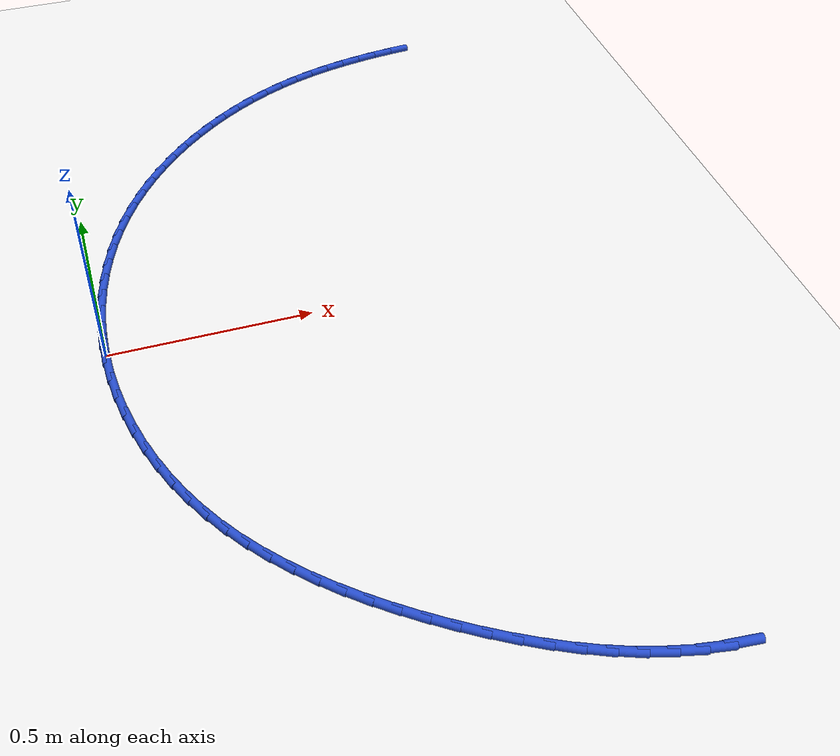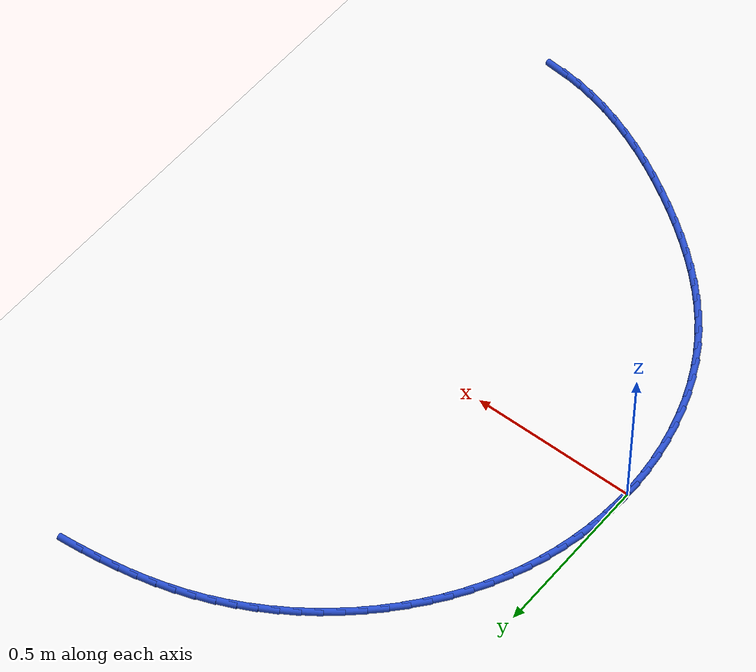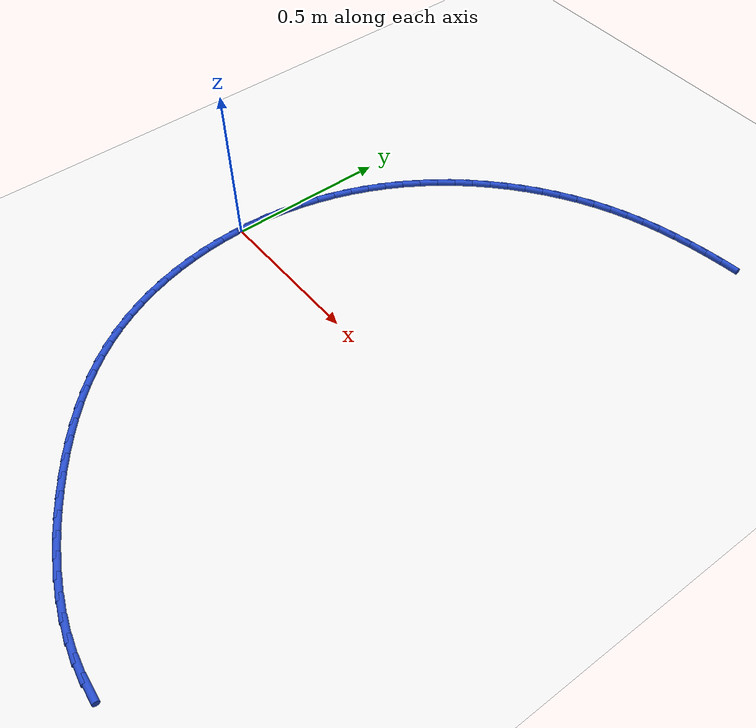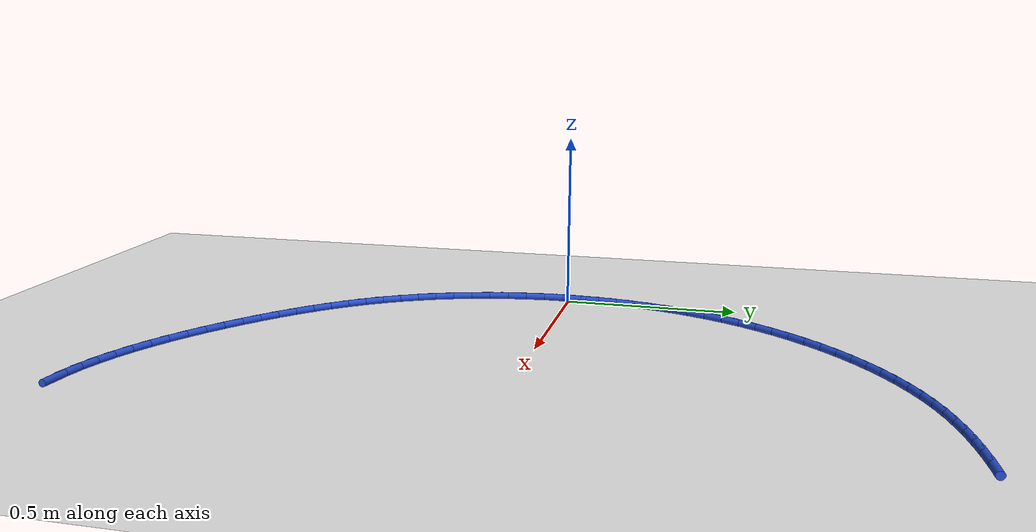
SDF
<sdf version="1.6">
 <world name="default">
  <model name="ground_plane">
   <static>1</static>
   <link name="link">
    <collision name="collision">
     <geometry><plane><normal>0 0 1</normal><size>100 100</size></plane></geometry>
     <surface><friction><ode><mu>100</mu><mu2>50</mu2></ode></friction></surface>
    </collision>
    <visual name="visual">
     <cast_shadows>0</cast_shadows>
     <geometry><plane><normal>0 0 1</normal><size>100 100</size></plane></geometry>
     <material>
      <script><uri>file://media/materials/scripts/gazebo.material</uri><name>Gazebo/WhiteGlow</name></script>
     </material>
    </visual>
   </link>
  </model>
  <model name="line">
   <link name="link_0">
    <pose>7.632783294297951e-17 0.0 0.01 0 1.57 1.5426454265933758</pose>
    <collision name="collision">
     <geometry><cylinder><radius>0.01</radius><length>0.08</length></cylinder></geometry>
    </collision>
    <visual name="visual">
     <material>
      <script><name>Gazebo/Blue</name><uri>file://media/materials/scripts/gazebo.material</uri></script>
     </material>
     <geometry><cylinder><radius>0.01</radius><length>0.08</length></cylinder></geometry>
    </visual>
   </link>
   <link name="link_1">
    <pose>0.0015899709792157849 0.05646536851486784 0.01 0 1.57 1.4860742646421639</pose>
    <collision name="collision">
     <geometry><cylinder><radius>0.01</radius><length>0.08</length></cylinder></geometry>
    </collision>
    <visual name="visual">
     <material>
      <script><name>Gazebo/Blue</name><uri>file://media/materials/scripts/gazebo.material</uri></script>
     </material>
     <geometry><cylinder><radius>0.01</radius><length>0.08</length></cylinder></geometry>
    </visual>
   </link>
   <link name="link_2">
    <pose>0.006360823636328731 0.11264238172625161 0.01 0 1.57 1.4297422771692536</pose>
    <collision name="collision">
     <geometry><cylinder><radius>0.01</radius><length>0.08</length></cylinder></geometry>
    </collision>
    <visual name="visual">
     <material>
      <script><name>Gazebo/Blue</name><uri>file://media/materials/scripts/gazebo.material</uri></script>
     </material>
     <geometry><cylinder><radius>0.01</radius><length>0.08</length></cylinder></geometry>
    </visual>
   </link>
   <link name="link_3">
    <pose>0.014276079416856248 0.16838478272034393 0.01 0 1.57 1.373559850659183</pose>
    <collision name="collision">
     <geometry><cylinder><radius>0.01</radius><length>0.08</length></cylinder></geometry>
    </collision>
    <visual name="visual">
     <material>
      <script><name>Gazebo/Blue</name><uri>file://media/materials/scripts/gazebo.material</uri></script>
     </material>
     <geometry><cylinder><radius>0.01</radius><length>0.08</length></cylinder></geometry>
    </visual>
   </link>
   <link name="link_4">
    <pose>0.025299259766315686 0.22354631458333757 0.01 0 1.57 1.3174320569557427</pose>
    <collision name="collision">
     <geometry><cylinder><radius>0.01</radius><length>0.08</length></cylinder></geometry>
    </collision>
    <visual name="visual">
     <material>
      <script><name>Gazebo/Blue</name><uri>file://media/materials/scripts/gazebo.material</uri></script>
     </material>
     <geometry><cylinder><radius>0.01</radius><length>0.08</length></cylinder></geometry>
    </visual>
   </link>
   <link name="link_5">
    <pose>0.039393886130224404 0.2779807204014252 0.01 0 1.57 1.2612616253354412</pose>
    <collision name="collision">
     <geometry><cylinder><radius>0.01</radius><length>0.08</length></cylinder></geometry>
    </collision>
    <visual name="visual">
     <material>
      <script><name>Gazebo/Blue</name><uri>file://media/materials/scripts/gazebo.material</uri></script>
     </material>
     <geometry><cylinder><radius>0.01</radius><length>0.08</length></cylinder></geometry>
    </visual>
   </link>
   <link name="link_6">
    <pose>0.056523479954099745 0.33154174326079944 0.01 0 1.57 1.2049519143934626</pose>
    <collision name="collision">
     <geometry><cylinder><radius>0.01</radius><length>0.08</length></cylinder></geometry>
    </collision>
    <visual name="visual">
     <material>
      <script><name>Gazebo/Blue</name><uri>file://media/materials/scripts/gazebo.material</uri></script>
     </material>
     <geometry><cylinder><radius>0.01</radius><length>0.08</length></cylinder></geometry>
    </visual>
   </link>
   <link name="link_7">
    <pose>0.07665156268345907 0.38408312624765334 0.01 0 1.57 1.1484099021132677</pose>
    <collision name="collision">
     <geometry><cylinder><radius>0.01</radius><length>0.08</length></cylinder></geometry>
    </collision>
    <visual name="visual">
     <material>
      <script><name>Gazebo/Blue</name><uri>file://media/materials/scripts/gazebo.material</uri></script>
     </material>
     <geometry><cylinder><radius>0.01</radius><length>0.08</length></cylinder></geometry>
    </visual>
   </link>
   <link name="link_8">
    <pose>0.09974165576381964 0.43545861244817896 0.01 0 1.57 1.0915492100848656</pose>
    <collision name="collision">
     <geometry><cylinder><radius>0.01</radius><length>0.08</length></cylinder></geometry>
    </collision>
    <visual name="visual">
     <material>
      <script><name>Gazebo/Blue</name><uri>file://media/materials/scripts/gazebo.material</uri></script>
     </material>
     <geometry><cylinder><radius>0.01</radius><length>0.08</length></cylinder></geometry>
    </visual>
   </link>
   <link name="link_9">
    <pose>0.12575728064069897 0.4855219449485697 0.01 0 1.57 1.0344214571395451</pose>
    <collision name="collision">
     <geometry><cylinder><radius>0.01</radius><length>0.08</length></cylinder></geometry>
    </collision>
    <visual name="visual">
     <material>
      <script><name>Gazebo/Blue</name><uri>file://media/materials/scripts/gazebo.material</uri></script>
     </material>
     <geometry><cylinder><radius>0.01</radius><length>0.08</length></cylinder></geometry>
    </visual>
   </link>
   <link name="link_10">
    <pose>0.15465462470984379 0.5341287273709183 0.01 0 1.57 0.9782268303934601</pose>
    <collision name="collision">
     <geometry><cylinder><radius>0.01</radius><length>0.08</length></cylinder></geometry>
    </collision>
    <visual name="visual">
     <material>
      <script><name>Gazebo/Blue</name><uri>file://media/materials/scripts/gazebo.material</uri></script>
     </material>
     <geometry><cylinder><radius>0.01</radius><length>0.08</length></cylinder></geometry>
    </visual>
   </link>
   <link name="link_11">
    <pose>0.1863155692041831 0.5811534136707482 0.01 0 1.57 0.9235329419798526</pose>
    <collision name="collision">
     <geometry><cylinder><radius>0.01</radius><length>0.08</length></cylinder></geometry>
    </collision>
    <visual name="visual">
     <material>
      <script><name>Gazebo/Blue</name><uri>file://media/materials/scripts/gazebo.material</uri></script>
     </material>
     <geometry><cylinder><radius>0.01</radius><length>0.08</length></cylinder></geometry>
    </visual>
   </link>
   <link name="link_12">
    <pose>0.22057879101167732 0.6264814180830169 0.01 0 1.57 0.8701261076769011</pose>
    <collision name="collision">
     <geometry><cylinder><radius>0.01</radius><length>0.08</length></cylinder></geometry>
    </collision>
    <visual name="visual">
     <material>
      <script><name>Gazebo/Blue</name><uri>file://media/materials/scripts/gazebo.material</uri></script>
     </material>
     <geometry><cylinder><radius>0.01</radius><length>0.08</length></cylinder></geometry>
    </visual>
   </link>
   <link name="link_13">
    <pose>0.25728243263129885 0.6699982904089702 0.01 0 1.57 0.8177682969104864</pose>
    <collision name="collision">
     <geometry><cylinder><radius>0.01</radius><length>0.08</length></cylinder></geometry>
    </collision>
    <visual name="visual">
     <material>
      <script><name>Gazebo/Blue</name><uri>file://media/materials/scripts/gazebo.material</uri></script>
     </material>
     <geometry><cylinder><radius>0.01</radius><length>0.08</length></cylinder></geometry>
    </visual>
   </link>
   <link name="link_14">
    <pose>0.29626463656202 0.7115895804498525 0.01 0 1.57 0.7662108346458166</pose>
    <collision name="collision">
     <geometry><cylinder><radius>0.01</radius><length>0.08</length></cylinder></geometry>
    </collision>
    <visual name="visual">
     <material>
      <script><name>Gazebo/Blue</name><uri>file://media/materials/scripts/gazebo.material</uri></script>
     </material>
     <geometry><cylinder><radius>0.01</radius><length>0.08</length></cylinder></geometry>
    </visual>
   </link>
   <link name="link_15">
    <pose>0.3373635453028134 0.75114083800691 0.01 0 1.57 0.7151974418473154</pose>
    <collision name="collision">
     <geometry><cylinder><radius>0.01</radius><length>0.08</length></cylinder></geometry>
    </collision>
    <visual name="visual">
     <material>
      <script><name>Gazebo/Blue</name><uri>file://media/materials/scripts/gazebo.material</uri></script>
     </material>
     <geometry><cylinder><radius>0.01</radius><length>0.08</length></cylinder></geometry>
    </visual>
   </link>
   <link name="link_16">
    <pose>0.3804173013526515 0.7885376128813877 0.01 0 1.57 0.6644662555731182</pose>
    <collision name="collision">
     <geometry><cylinder><radius>0.01</radius><length>0.08</length></cylinder></geometry>
    </collision>
    <visual name="visual">
     <material>
      <script><name>Gazebo/Blue</name><uri>file://media/materials/scripts/gazebo.material</uri></script>
     </material>
     <geometry><cylinder><radius>0.01</radius><length>0.08</length></cylinder></geometry>
    </visual>
   </link>
   <link name="link_17">
    <pose>0.4252640472105066 0.8236654548745304 0.01 0 1.57 0.6137511313083397</pose>
    <collision name="collision">
     <geometry><cylinder><radius>0.01</radius><length>0.08</length></cylinder></geometry>
    </collision>
    <visual name="visual">
     <material>
      <script><name>Gazebo/Blue</name><uri>file://media/materials/scripts/gazebo.material</uri></script>
     </material>
     <geometry><cylinder><radius>0.01</radius><length>0.08</length></cylinder></geometry>
    </visual>
   </link>
   <link name="link_18">
    <pose>0.4717419253753512 0.8564099137875839 0.01 0 1.57 0.56278253124707</pose>
    <collision name="collision">
     <geometry><cylinder><radius>0.01</radius><length>0.08</length></cylinder></geometry>
    </collision>
    <visual name="visual">
     <material>
      <script><name>Gazebo/Blue</name><uri>file://media/materials/scripts/gazebo.material</uri></script>
     </material>
     <geometry><cylinder><radius>0.01</radius><length>0.08</length></cylinder></geometry>
    </visual>
   </link>
   <link name="link_19">
    <pose>0.5196890783461579 0.8866565394217935 0.01 0 1.57 0.5112883056899705</pose>
    <collision name="collision">
     <geometry><cylinder><radius>0.01</radius><length>0.08</length></cylinder></geometry>
    </collision>
    <visual name="visual">
     <material>
      <script><name>Gazebo/Blue</name><uri>file://media/materials/scripts/gazebo.material</uri></script>
     </material>
     <geometry><cylinder><radius>0.01</radius><length>0.08</length></cylinder></geometry>
    </visual>
   </link>
   <link name="link_20">
    <pose>0.568943648621899 0.9142908815784039 0.01 0 1.57 0.4589946870763715</pose>
    <collision name="collision">
     <geometry><cylinder><radius>0.01</radius><length>0.08</length></cylinder></geometry>
    </collision>
    <visual name="visual">
     <material>
      <script><name>Gazebo/Blue</name><uri>file://media/materials/scripts/gazebo.material</uri></script>
     </material>
     <geometry><cylinder><radius>0.01</radius><length>0.08</length></cylinder></geometry>
    </visual>
   </link>
   <link name="link_21">
    <pose>0.6193437787015468 0.9391984900586607 0.01 0 1.57 0.4056278399658324</pose>
    <collision name="collision">
     <geometry><cylinder><radius>0.01</radius><length>0.08</length></cylinder></geometry>
    </collision>
    <visual name="visual">
     <material>
      <script><name>Gazebo/Blue</name><uri>file://media/materials/scripts/gazebo.material</uri></script>
     </material>
     <geometry><cylinder><radius>0.01</radius><length>0.08</length></cylinder></geometry>
    </visual>
   </link>
   <link name="link_22">
    <pose>0.670727611084074 0.9612649146638094 0.01 0 1.57 0.3516771341714857</pose>
    <collision name="collision">
     <geometry><cylinder><radius>0.01</radius><length>0.08</length></cylinder></geometry>
    </collision>
    <visual name="visual">
     <material>
      <script><name>Gazebo/Blue</name><uri>file://media/materials/scripts/gazebo.material</uri></script>
     </material>
     <geometry><cylinder><radius>0.01</radius><length>0.08</length></cylinder></geometry>
    </visual>
   </link>
   <link name="link_23">
    <pose>0.7229496229718 0.9804267513841677 0.01 0 1.57 0.3006061323264245</pose>
    <collision name="collision">
     <geometry><cylinder><radius>0.01</radius><length>0.08</length></cylinder></geometry>
    </collision>
    <visual name="visual">
     <material>
      <script><name>Gazebo/Blue</name><uri>file://media/materials/scripts/gazebo.material</uri></script>
     </material>
     <geometry><cylinder><radius>0.01</radius><length>0.08</length></cylinder></geometry>
    </visual>
   </link>
   <link name="link_24">
    <pose>0.775938795364211 0.9968534216759373 0.01 0 1.57 0.2537325399977857</pose>
    <collision name="collision">
     <geometry><cylinder><radius>0.01</radius><length>0.08</length></cylinder></geometry>
    </collision>
    <visual name="visual">
     <material>
      <script><name>Gazebo/Blue</name><uri>file://media/materials/scripts/gazebo.material</uri></script>
     </material>
     <geometry><cylinder><radius>0.01</radius><length>0.08</length></cylinder></geometry>
    </visual>
   </link>
   <link name="link_25">
    <pose>0.8296453389992389 1.0107806902413328 0.01 0 1.57 0.21130499135284544</pose>
    <collision name="collision">
     <geometry><cylinder><radius>0.01</radius><length>0.08</length></cylinder></geometry>
    </collision>
    <visual name="visual">
     <material>
      <script><name>Gazebo/Blue</name><uri>file://media/materials/scripts/gazebo.material</uri></script>
     </material>
     <geometry><cylinder><radius>0.01</radius><length>0.08</length></cylinder></geometry>
    </visual>
   </link>
   <link name="link_26">
    <pose>0.8840194661742575 1.0224443266558445 0.01 0 1.57 0.17346069295857808</pose>
    <collision name="collision">
     <geometry><cylinder><radius>0.01</radius><length>0.08</length></cylinder></geometry>
    </collision>
    <visual name="visual">
     <material>
      <script><name>Gazebo/Blue</name><uri>file://media/materials/scripts/gazebo.material</uri></script>
     </material>
     <geometry><cylinder><radius>0.01</radius><length>0.08</length></cylinder></geometry>
    </visual>
   </link>
   <link name="link_27">
    <pose>0.9390113891866396 1.0320801004949616 0.01 0 1.57 0.1402483011871748</pose>
    <collision name="collision">
     <geometry><cylinder><radius>0.01</radius><length>0.08</length></cylinder></geometry>
    </collision>
    <visual name="visual">
     <material>
      <script><name>Gazebo/Blue</name><uri>file://media/materials/scripts/gazebo.material</uri></script>
     </material>
     <geometry><cylinder><radius>0.01</radius><length>0.08</length></cylinder></geometry>
    </visual>
   </link>
   <link name="link_28">
    <pose>0.9945713203337587 1.0399237813341744 0.01 0 1.57 0.11165149556094935</pose>
    <collision name="collision">
     <geometry><cylinder><radius>0.01</radius><length>0.08</length></cylinder></geometry>
    </collision>
    <visual name="visual">
     <material>
      <script><name>Gazebo/Blue</name><uri>file://media/materials/scripts/gazebo.material</uri></script>
     </material>
     <geometry><cylinder><radius>0.01</radius><length>0.08</length></cylinder></geometry>
    </visual>
   </link>
   <link name="link_29">
    <pose>1.050649471912988 1.046211138748973 0.01 0 1.57 0.08760142494976719</pose>
    <collision name="collision">
     <geometry><cylinder><radius>0.01</radius><length>0.08</length></cylinder></geometry>
    </collision>
    <visual name="visual">
     <material>
      <script><name>Gazebo/Blue</name><uri>file://media/materials/scripts/gazebo.material</uri></script>
     </material>
     <geometry><cylinder><radius>0.01</radius><length>0.08</length></cylinder></geometry>
    </visual>
   </link>
   <link name="link_91">
    <pose>1.0492311960794865 -1.0809559099125696 0.01 0 1.57 -0.09392435149468632</pose>
    <collision name="collision">
     <geometry><cylinder><radius>0.01</radius><length>0.08</length></cylinder></geometry>
    </collision>
    <visual name="visual">
     <material>
      <script><name>Gazebo/Blue</name><uri>file://media/materials/scripts/gazebo.material</uri></script>
     </material>
     <geometry><cylinder><radius>0.01</radius><length>0.08</length></cylinder></geometry>
    </visual>
   </link>
   <link name="link_92">
    <pose>0.9949951582970074 -1.0758467925500392 0.01 0 1.57 -0.16960212045209946</pose>
    <collision name="collision">
     <geometry><cylinder><radius>0.01</radius><length>0.08</length></cylinder></geometry>
    </collision>
    <visual name="visual">
     <material>
      <script><name>Gazebo/Blue</name><uri>file://media/materials/scripts/gazebo.material</uri></script>
     </material>
     <geometry><cylinder><radius>0.01</radius><length>0.08</length></cylinder></geometry>
    </visual>
   </link>
   <link name="link_93">
    <pose>0.9405913389586881 -1.0665302882822145 0.01 0 1.57 -0.23806306051681944</pose>
    <collision name="collision">
     <geometry><cylinder><radius>0.01</radius><length>0.08</length></cylinder></geometry>
    </collision>
    <visual name="visual">
     <material>
      <script><name>Gazebo/Blue</name><uri>file://media/materials/scripts/gazebo.material</uri></script>
     </material>
     <geometry><cylinder><radius>0.01</radius><length>0.08</length></cylinder></geometry>
    </visual>
   </link>
   <link name="link_94">
    <pose>0.8861917680568681 -1.0533294307039343 0.01 0 1.57 -0.29981395504124475</pose>
    <collision name="collision">
     <geometry><cylinder><radius>0.01</radius><length>0.08</length></cylinder></geometry>
    </collision>
    <visual name="visual">
     <material>
      <script><name>Gazebo/Blue</name><uri>file://media/materials/scripts/gazebo.material</uri></script>
     </material>
     <geometry><cylinder><radius>0.01</radius><length>0.08</length></cylinder></geometry>
    </visual>
   </link>
   <link name="link_95">
    <pose>0.831968475583885 -1.036567253410038 0.01 0 1.57 -0.35546876644786923</pose>
    <collision name="collision">
     <geometry><cylinder><radius>0.01</radius><length>0.08</length></cylinder></geometry>
    </collision>
    <visual name="visual">
     <material>
      <script><name>Gazebo/Blue</name><uri>file://media/materials/scripts/gazebo.material</uri></script>
     </material>
     <geometry><cylinder><radius>0.01</radius><length>0.08</length></cylinder></geometry>
    </visual>
   </link>
   <link name="link_96">
    <pose>0.7780934915320763 -1.0165667899953648 0.01 0 1.57 -0.40567435386102785</pose>
    <collision name="collision">
     <geometry><cylinder><radius>0.01</radius><length>0.08</length></cylinder></geometry>
    </collision>
    <visual name="visual">
     <material>
      <script><name>Gazebo/Blue</name><uri>file://media/materials/scripts/gazebo.material</uri></script>
     </material>
     <geometry><cylinder><radius>0.01</radius><length>0.08</length></cylinder></geometry>
    </visual>
   </link>
   <link name="link_97">
    <pose>0.7247388458937813 -0.9936510740547543 0.01 0 1.57 -0.45106418574199425</pose>
    <collision name="collision">
     <geometry><cylinder><radius>0.01</radius><length>0.08</length></cylinder></geometry>
    </collision>
    <visual name="visual">
     <material>
      <script><name>Gazebo/Blue</name><uri>file://media/materials/scripts/gazebo.material</uri></script>
     </material>
     <geometry><cylinder><radius>0.01</radius><length>0.08</length></cylinder></geometry>
    </visual>
   </link>
   <link name="link_98">
    <pose>0.6720765686613375 -0.9681431391830451 0.01 0 1.57 -0.4922329490788362</pose>
    <collision name="collision">
     <geometry><cylinder><radius>0.01</radius><length>0.08</length></cylinder></geometry>
    </collision>
    <visual name="visual">
     <material>
      <script><name>Gazebo/Blue</name><uri>file://media/materials/scripts/gazebo.material</uri></script>
     </material>
     <geometry><cylinder><radius>0.01</radius><length>0.08</length></cylinder></geometry>
    </visual>
   </link>
   <link name="link_99">
    <pose>0.6202786898270833 -0.9403660189750775 0.01 0 1.57 -0.529725339947218</pose>
    <collision name="collision">
     <geometry><cylinder><radius>0.01</radius><length>0.08</length></cylinder></geometry>
    </collision>
    <visual name="visual">
     <material>
      <script><name>Gazebo/Blue</name><uri>file://media/materials/scripts/gazebo.material</uri></script>
     </material>
     <geometry><cylinder><radius>0.01</radius><length>0.08</length></cylinder></geometry>
    </visual>
   </link>
   <link name="link_100">
    <pose>0.5695172393833555 -0.9106427470256894 0.01 0 1.57 -0.564033824746194</pose>
    <collision name="collision">
     <geometry><cylinder><radius>0.01</radius><length>0.08</length></cylinder></geometry>
    </collision>
    <visual name="visual">
     <material>
      <script><name>Gazebo/Blue</name><uri>file://media/materials/scripts/gazebo.material</uri></script>
     </material>
     <geometry><cylinder><radius>0.01</radius><length>0.08</length></cylinder></geometry>
    </visual>
   </link>
   <link name="link_101">
    <pose>0.5199642473224942 -0.8792963569297211 0.01 0 1.57 -0.5957988794818853</pose>
    <collision name="collision">
     <geometry><cylinder><radius>0.01</radius><length>0.08</length></cylinder></geometry>
    </collision>
    <visual name="visual">
     <material>
      <script><name>Gazebo/Blue</name><uri>file://media/materials/scripts/gazebo.material</uri></script>
     </material>
     <geometry><cylinder><radius>0.01</radius><length>0.08</length></cylinder></geometry>
    </visual>
   </link>
   <link name="link_102">
    <pose>0.47179105357159146 -0.8466355567956788 0.01 0 1.57 -0.6284522089456255</pose>
    <collision name="collision">
     <geometry><cylinder><radius>0.01</radius><length>0.08</length></cylinder></geometry>
    </collision>
    <visual name="visual">
     <material>
      <script><name>Gazebo/Blue</name><uri>file://media/materials/scripts/gazebo.material</uri></script>
     </material>
     <geometry><cylinder><radius>0.01</radius><length>0.08</length></cylinder></geometry>
    </visual>
   </link>
   <link name="link_103">
    <pose>0.4251582194133147 -0.8127452942624206 0.01 0 1.57 -0.6646142518912935</pose>
    <collision name="collision">
     <geometry><cylinder><radius>0.01</radius><length>0.08</length></cylinder></geometry>
    </collision>
    <visual name="visual">
     <material>
      <script><name>Gazebo/Blue</name><uri>file://media/materials/scripts/gazebo.material</uri></script>
     </material>
     <geometry><cylinder><radius>0.01</radius><length>0.08</length></cylinder></geometry>
    </visual>
   </link>
   <link name="link_104">
    <pose>0.38021777062180484 -0.7775333231287088 0.01 0 1.57 -0.7044798945907778</pose>
    <collision name="collision">
     <geometry><cylinder><radius>0.01</radius><length>0.08</length></cylinder></geometry>
    </collision>
    <visual name="visual">
     <material>
      <script><name>Gazebo/Blue</name><uri>file://media/materials/scripts/gazebo.material</uri></script>
     </material>
     <geometry><cylinder><radius>0.01</radius><length>0.08</length></cylinder></geometry>
    </visual>
   </link>
   <link name="link_105">
    <pose>0.337121499203713 -0.7409025442710383 0.01 0 1.57 -0.7481443837372724</pose>
    <collision name="collision">
     <geometry><cylinder><radius>0.01</radius><length>0.08</length></cylinder></geometry>
    </collision>
    <visual name="visual">
     <material>
      <script><name>Gazebo/Blue</name><uri>file://media/materials/scripts/gazebo.material</uri></script>
     </material>
     <geometry><cylinder><radius>0.01</radius><length>0.08</length></cylinder></geometry>
    </visual>
   </link>
   <link name="link_106">
    <pose>0.296021197165689 -0.7027558585659022 0.01 0 1.57 -0.7956522587399867</pose>
    <collision name="collision">
     <geometry><cylinder><radius>0.01</radius><length>0.08</length></cylinder></geometry>
    </collision>
    <visual name="visual">
     <material>
      <script><name>Gazebo/Blue</name><uri>file://media/materials/scripts/gazebo.material</uri></script>
     </material>
     <geometry><cylinder><radius>0.01</radius><length>0.08</length></cylinder></geometry>
    </visual>
   </link>
   <link name="link_107">
    <pose>0.2570686565143826 -0.6629961668897941 0.01 0 1.57 -0.8469771206373421</pose>
    <collision name="collision">
     <geometry><cylinder><radius>0.01</radius><length>0.08</length></cylinder></geometry>
    </collision>
    <visual name="visual">
     <material>
      <script><name>Gazebo/Blue</name><uri>file://media/materials/scripts/gazebo.material</uri></script>
     </material>
     <geometry><cylinder><radius>0.01</radius><length>0.08</length></cylinder></geometry>
    </visual>
   </link>
   <link name="link_108">
    <pose>0.2204156692564438 -0.6215263701192076 0.01 0 1.57 -0.902000514891758</pose>
    <collision name="collision">
     <geometry><cylinder><radius>0.01</radius><length>0.08</length></cylinder></geometry>
    </collision>
    <visual name="visual">
     <material>
      <script><name>Gazebo/Blue</name><uri>file://media/materials/scripts/gazebo.material</uri></script>
     </material>
     <geometry><cylinder><radius>0.01</radius><length>0.08</length></cylinder></geometry>
    </visual>
   </link>
   <link name="link_109">
    <pose>0.18621402739852366 -0.5782493691306375 0.01 0 1.57 -0.9604924793363105</pose>
    <collision name="collision">
     <geometry><cylinder><radius>0.01</radius><length>0.08</length></cylinder></geometry>
    </collision>
    <visual name="visual">
     <material>
      <script><name>Gazebo/Blue</name><uri>file://media/materials/scripts/gazebo.material</uri></script>
     </material>
     <geometry><cylinder><radius>0.01</radius><length>0.08</length></cylinder></geometry>
    </visual>
   </link>
   <link name="link_110">
    <pose>0.1546155229472718 -0.533068064800577 0.01 0 1.57 -1.022076336962984</pose>
    <collision name="collision">
     <geometry><cylinder><radius>0.01</radius><length>0.08</length></cylinder></geometry>
    </collision>
    <visual name="visual">
     <material>
      <script><name>Gazebo/Blue</name><uri>file://media/materials/scripts/gazebo.material</uri></script>
     </material>
     <geometry><cylinder><radius>0.01</radius><length>0.08</length></cylinder></geometry>
    </visual>
   </link>
   <link name="link_111">
    <pose>0.12577146389850202 -0.4858867862037937 0.01 0 1.57 -1.0846793742919318</pose>
    <collision name="collision">
     <geometry><cylinder><radius>0.01</radius><length>0.08</length></cylinder></geometry>
    </collision>
    <visual name="visual">
     <material>
      <script><name>Gazebo/Blue</name><uri>file://media/materials/scripts/gazebo.material</uri></script>
     </material>
     <geometry><cylinder><radius>0.01</radius><length>0.08</length></cylinder></geometry>
    </visual>
   </link>
   <link name="link_112">
    <pose>0.09979402688189787 -0.4367253295603314 0.01 0 1.57 -1.1454877531551375</pose>
    <collision name="collision">
     <geometry><cylinder><radius>0.01</radius><length>0.08</length></cylinder></geometry>
    </collision>
    <visual name="visual">
     <material>
      <script><name>Gazebo/Blue</name><uri>file://media/materials/scripts/gazebo.material</uri></script>
     </material>
     <geometry><cylinder><radius>0.01</radius><length>0.08</length></cylinder></geometry>
    </visual>
   </link>
   <link name="link_113">
    <pose>0.07672808738729191 -0.38580208038729163 0.01 0 1.57 -1.2045485722737332</pose>
    <collision name="collision">
     <geometry><cylinder><radius>0.01</radius><length>0.08</length></cylinder></geometry>
    </collision>
    <visual name="visual">
     <material>
      <script><name>Gazebo/Blue</name><uri>file://media/materials/scripts/gazebo.material</uri></script>
     </material>
     <geometry><cylinder><radius>0.01</radius><length>0.08</length></cylinder></geometry>
    </visual>
   </link>
   <link name="link_114">
    <pose>0.05661187825348147 -0.3333550250495805 0.01 0 1.57 -1.2622126138283971</pose>
    <collision name="collision">
     <geometry><cylinder><radius>0.01</radius><length>0.08</length></cylinder></geometry>
    </collision>
    <visual name="visual">
     <material>
      <script><name>Gazebo/Blue</name><uri>file://media/materials/scripts/gazebo.material</uri></script>
     </material>
     <geometry><cylinder><radius>0.01</radius><length>0.08</length></cylinder></geometry>
    </visual>
   </link>
   <link name="link_115">
    <pose>0.039483632319264175 -0.2796221499121042 0.01 0 1.57 -1.3188395721133883</pose>
    <collision name="collision">
     <geometry><cylinder><radius>0.01</radius><length>0.08</length></cylinder></geometry>
    </collision>
    <visual name="visual">
     <material>
      <script><name>Gazebo/Blue</name><uri>file://media/materials/scripts/gazebo.material</uri></script>
     </material>
     <geometry><cylinder><radius>0.01</radius><length>0.08</length></cylinder></geometry>
    </visual>
   </link>
   <link name="link_116">
    <pose>0.025381582423438184 -0.22484144133977116 0.01 0 1.57 -1.3747933747617638</pose>
    <collision name="collision">
     <geometry><cylinder><radius>0.01</radius><length>0.08</length></cylinder></geometry>
    </collision>
    <visual name="visual">
     <material>
      <script><name>Gazebo/Blue</name><uri>file://media/materials/scripts/gazebo.material</uri></script>
     </material>
     <geometry><cylinder><radius>0.01</radius><length>0.08</length></cylinder></geometry>
    </visual>
   </link>
   <link name="link_117">
    <pose>0.01434396140480103 -0.16925088569748742 0.01 0 1.57 -1.4304393969933775</pose>
    <collision name="collision">
     <geometry><cylinder><radius>0.01</radius><length>0.08</length></cylinder></geometry>
    </collision>
    <visual name="visual">
     <material>
      <script><name>Gazebo/Blue</name><uri>file://media/materials/scripts/gazebo.material</uri></script>
     </material>
     <geometry><cylinder><radius>0.01</radius><length>0.08</length></cylinder></geometry>
    </visual>
   </link>
   <link name="link_118">
    <pose>0.0064090021021504535 -0.11308846935015987 0.01 0 1.57 -1.4861428485851849</pose>
    <collision name="collision">
     <geometry><cylinder><radius>0.01</radius><length>0.08</length></cylinder></geometry>
    </collision>
    <visual name="visual">
     <material>
      <script><name>Gazebo/Blue</name><uri>file://media/materials/scripts/gazebo.material</uri></script>
     </material>
     <geometry><cylinder><radius>0.01</radius><length>0.08</length></cylinder></geometry>
    </visual>
   </link>
   <link name="link_119">
    <pose>0.001614937354284177 -0.05659217866269465 0.01 0 1.57 -1.5422676635690993</pose>
    <collision name="collision">
     <geometry><cylinder><radius>0.01</radius><length>0.08</length></cylinder></geometry>
    </collision>
    <visual name="visual">
     <material>
      <script><name>Gazebo/Blue</name><uri>file://media/materials/scripts/gazebo.material</uri></script>
     </material>
     <geometry><cylinder><radius>0.01</radius><length>0.08</length></cylinder></geometry>
    </visual>
   </link>
   <link name="link_120">
    <pose>9.020562075079397e-17 -1.3877787807814457e-16 0.01 0 1.57 1.5424174003233282</pose>
    <collision name="collision">
     <geometry><cylinder><radius>0.01</radius><length>0.08</length></cylinder></geometry>
    </collision>
    <visual name="visual">
     <material>
      <script><name>Gazebo/Blue</name><uri>file://media/materials/scripts/gazebo.material</uri></script>
     </material>
     <geometry><cylinder><radius>0.01</radius><length>0.08</length></cylinder></geometry>
    </visual>
   </link>
   <link name="link_121">
    <pose>0.0016024228780958556 0.056450080273017574 0.01 0 1.57 1.5424174003233277</pose>
    <collision name="collision">
     <geometry><cylinder><radius>0.01</radius><length>0.08</length></cylinder></geometry>
    </collision>
    <visual name="visual">
     <material>
      <script><name>Gazebo/Blue</name><uri>file://media/materials/scripts/gazebo.material</uri></script>
     </material>
     <geometry><cylinder><radius>0.01</radius><length>0.08</length></cylinder></geometry>
    </visual>
   </link>
  </model>
 </world>
</sdf>
